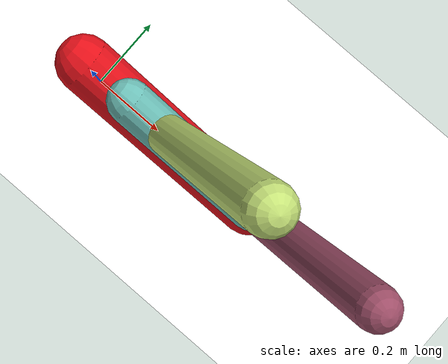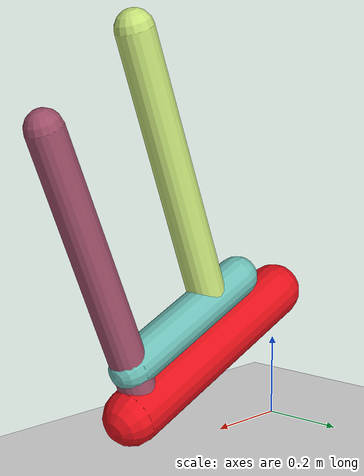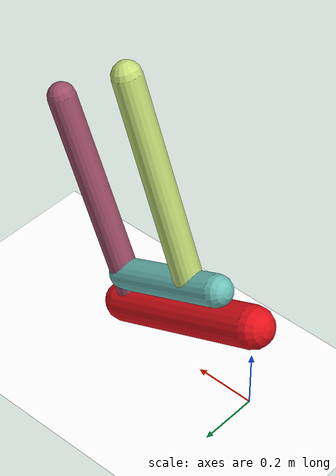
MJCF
<mujoco model="morphology">
  <option timestep="0.01"/>
  <default>
    <default class="/"/>
  </default>
  <asset>
    <texture name="texplane" type="2d" builtin="checker" rgb1="0.1 0.2 0.3" rgb2="0.2 0.3 0.4" width="300" height="300"/>
    <material name="MatPlane" class="/" texture="texplane" texrepeat="20 20" specular="1" shininess="1" reflectance="0.5"/>
  </asset>
  <worldbody>
    <light name="//unnamed_light_0" class="/" directional="true" pos="0 0 1.5" dir="0 0 -1.3" cutoff="1e+02" exponent="1" diffuse="1 1 1" specular="0.1 0.1 0.1"/>
    <geom name="ground" class="/" type="plane" size="15 15 0.5" material="MatPlane" rgba="1 1 1 1"/>
    <body name="body" pos="0 0 0.32">
      <geom name="geom0" class="/" type="capsule" contype="1" conaffinity="1" condim="3" size="0.068" rgba="0.89 0.065 0.1 1" friction="0.4 0.1 0.1" fromto="0 0 0 0.51 0 -0.22"/>
      <body name="body1" pos="0.47 0 -0.2">
        <geom name="geom1" class="/" type="capsule" contype="1" conaffinity="1" condim="3" size="0.045" rgba="0.61 0.3 0.4 1" friction="0.4 0.1 0.1" fromto="0 0 0 0.29 0 0.66"/>
        <body name="body2" pos="0.042 0 0.096">
          <geom name="geom2" class="/" type="capsule" contype="1" conaffinity="1" condim="3" size="0.052" rgba="0.42 0.74 0.71 1" friction="0.4 0.1 0.1" fromto="0 0 0 -0.37 0 0.16"/>
          <body name="body3" pos="-0.27 0 0.11">
            <geom name="geom3" class="/" type="capsule" contype="1" conaffinity="1" condim="3" size="0.047" rgba="0.76 0.87 0.46 1" friction="0.4 0.1 0.1" fromto="0 0 0 0.25 0 0.66"/>
            <joint name="joint3" class="/" type="hinge" axis="0 1 0" limited="true" stiffness="20" range="-30 30" armature="0.1" damping="2"/>
          </body>
          <joint name="joint2" class="/" type="hinge" axis="0 1 0" limited="true" stiffness="20" range="-40 40" armature="0.1" damping="2"/>
        </body>
        <joint name="joint1" class="/" type="hinge" axis="0 1 0" limited="true" stiffness="20" range="-70 70" armature="0.1" damping="2"/>
      </body>
      <joint name="rootx" class="/" type="slide" axis="1 0 0" limited="false" stiffness="0" armature="0" damping="0"/>
      <joint name="rootz" class="/" type="slide" axis="0 0 1" limited="false" stiffness="0" armature="0" damping="0"/>
      <joint name="rooty" class="/" type="hinge" axis="0 1 0" limited="false" stiffness="0" armature="0" damping="0"/>
    </body>
  </worldbody>
  <actuator>
    <motor name="motor3" class="/" ctrllimited="true" ctrlrange="-1 1" gear="1.3e+02" joint="joint3"/>
    <motor name="motor2" class="/" ctrllimited="true" ctrlrange="-1 1" gear="1.5e+02" joint="joint2"/>
    <motor name="motor1" class="/" ctrllimited="true" ctrlrange="-1 1" gear="1e+02" joint="joint1"/>
  </actuator>
  <sensor>
    <subtreelinvel name="velocity" body="body"/>
  </sensor>
</mujoco>
